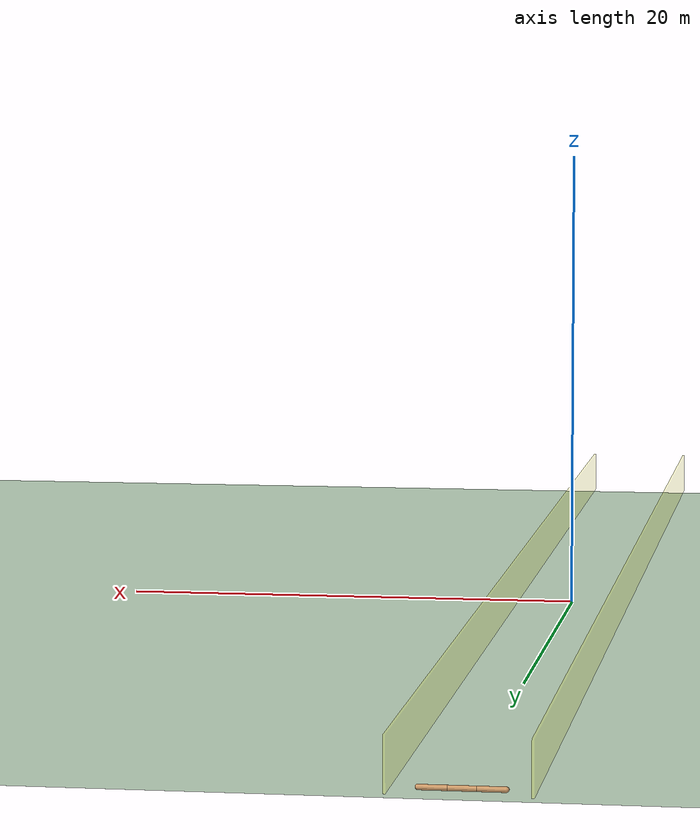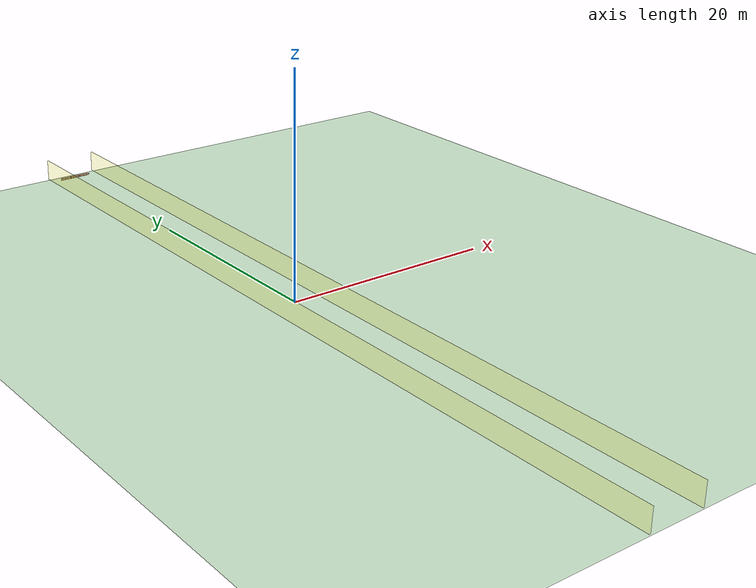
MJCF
<mujoco model="swimmer">
  <compiler angle="degree" coordinate="local" inertiafromgeom="true"/>
  <option collision="predefined" density="4000" integrator="RK4" timestep="0.01" viscosity="0.1"/>
  <default>
    <geom conaffinity="1" condim="1" contype="1" material="geom" rgba="0.8 0.6 .4 1"/>
    <joint armature='0.1'  />
  </default>
  <asset>
    <texture builtin="gradient" height="100" rgb1="1 1 1" rgb2="0 0 0" type="skybox" width="100"/>
    <texture builtin="flat" height="1278" mark="cross" markrgb="1 1 1" name="texgeom" random="0.01" rgb1="0.8 0.6 0.4" rgb2="0.8 0.6 0.4" type="cube" width="127"/>
    <texture builtin="checker" height="100" name="texplane" rgb1="0 0 0" rgb2="0.8 0.8 0.8" type="2d" width="100"/>
    <material name="MatPlane" reflectance="0.5" shininess="1" specular="1" texrepeat="30 30" texture="texplane"/>
    <material name="geom" texture="texgeom" texuniform="true"/>
  </asset>
  <worldbody>
    <light cutoff="100" diffuse="1 1 1" dir="-0 0 -1.3" directional="true" exponent="1" pos="0 0 1.3" specular=".1 .1 .1" castshadow="false"/>
    <geom conaffinity="1" condim="3" material="MatPlane" name="floor" pos="0 0 -0.1" rgba="0.8 0.9 0.8 1" size="40 40 0.1" type="plane"/>
    <body name="wall1" pos="-2.5 0 0.95">
        <geom name="wall1" type="box" size="0.05 40 1" rgba="1 1 0 0.1" contype="0" conaffinity="0"/>
    </body>
    <body name="wall2" pos="2.5 0 0.95">
        <geom name="wall2" type="box" size="0.05 40 1" rgba="1 1 0 0.1" contype="0" conaffinity="0"/>
    </body>
    <!--  ================= SWIMMER ================= /-->
    <body name="torso" pos="0 39 0">
      <camera name="track" mode="trackcom" pos="0 -3 3" xyaxes="1 0 0 0 1 1"/>
      <geom density="1000" fromto="1.5 0 0 0.5 0 0" size="0.1" type="capsule"/>
      <joint axis="1 0 0" name="slider1" pos="0 0 0" type="slide"/>
      <joint axis="0 1 0" name="slider2" pos="0 0 0" type="slide"/>
      <joint axis="0 0 1" name="free_body_rot" pos="0 0 0" type="hinge"/>
      <body name="mid" pos="0.5 0 0">
        <geom density="1000" fromto="0 0 0 -1 0 0" size="0.1" type="capsule"/>
        <joint axis="0 0 1" limited="true" name="motor1_rot" pos="0 0 0" range="-100 100" type="hinge"/>
        <body name="back" pos="-1 0 0">
          <geom density="1000" fromto="0 0 0 -1 0 0" size="0.1" type="capsule"/>
          <joint axis="0 0 1" limited="true" name="motor2_rot" pos="0 0 0" range="-100 100" type="hinge"/>
        </body>
      </body>
    </body>
  </worldbody>
  <actuator>
    <motor ctrllimited="true" ctrlrange="-1 1" gear="150.0" joint="motor1_rot"/>
    <motor ctrllimited="true" ctrlrange="-1 1" gear="150.0" joint="motor2_rot"/>
  </actuator>
</mujoco>
